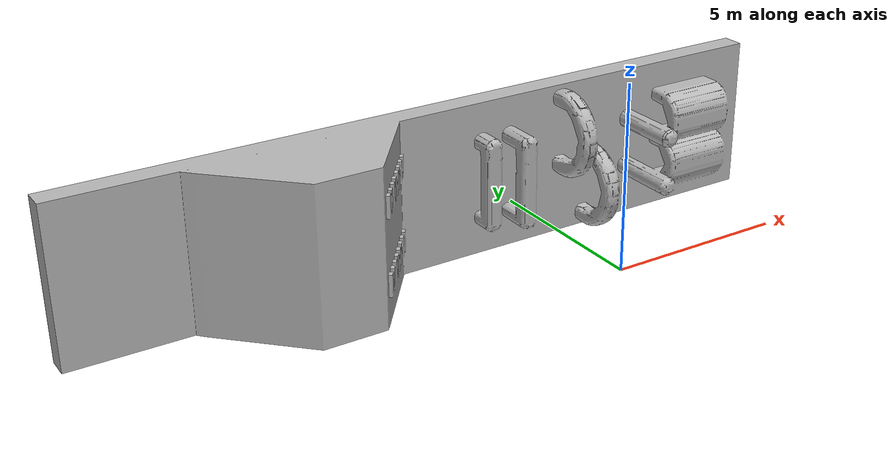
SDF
<?xml version="1.0" ?>
<sdf version="1.6">
  <model name='RoboyParkourTrack'>
  <static>1</static>
    <link name='mesh_link'>

      <visual name='track_visual'>
        <inertial>
         <mass>10000.0</mass>
         <!-- inertia based on solid sphere 2/5 mr^2 -->
         <inertia>
           <ixx>1</ixx>
           <iyy>1</iyy>
           <izz>1</izz>
           <ixy>0</ixy>
           <ixz>0</ixz>
           <iyz>0</iyz>
         </inertia>
       </inertial>
        <geometry>
          <mesh>
            <uri>model://RoboyParkourTrack/convex_track.obj</uri>
            <scale>0.1 0.1 0.1</scale>
          </mesh>
        </geometry>
      </visual>
      <collision name='track_collision'>
        <geometry>
          <mesh>
            <uri>model://RoboyParkourTrack/convex_track.obj</uri>
            <scale>0.1 0.1 0.1</scale>
          </mesh>
        </geometry>
        <surface>
          <friction>
            <ode>
              <mu>1.000000</mu>
              <mu2>1.000000</mu2>
              <fdir1>0.000000 0.000000 0.000000</fdir1>
              <slip1>0.000000</slip1>
              <slip2>0.000000</slip2>
            </ode>
          </friction>
          <bounce>
            <restitution_coefficient>0.0500000</restitution_coefficient>
            <threshold>0.000000</threshold>
          </bounce>
          <contact>
            <ode>
            </ode>
          </contact>
        </surface>
        <max_contacts>10000</max_contacts>
      </collision>
      <self_collide>0</self_collide>
      <inertial>
        <inertia>
          <ixx>1</ixx>
          <ixy>0</ixy>
          <ixz>0</ixz>
          <iyy>1</iyy>
          <iyz>0</iyz>
          <izz>1</izz>
        </inertia>
        <mass>1</mass>
      </inertial>
      <enable_wind>0</enable_wind>
    </link>
    <pose frame=''>3 0 2 0 0 3.1416 0</pose>
  </model>
</sdf>
